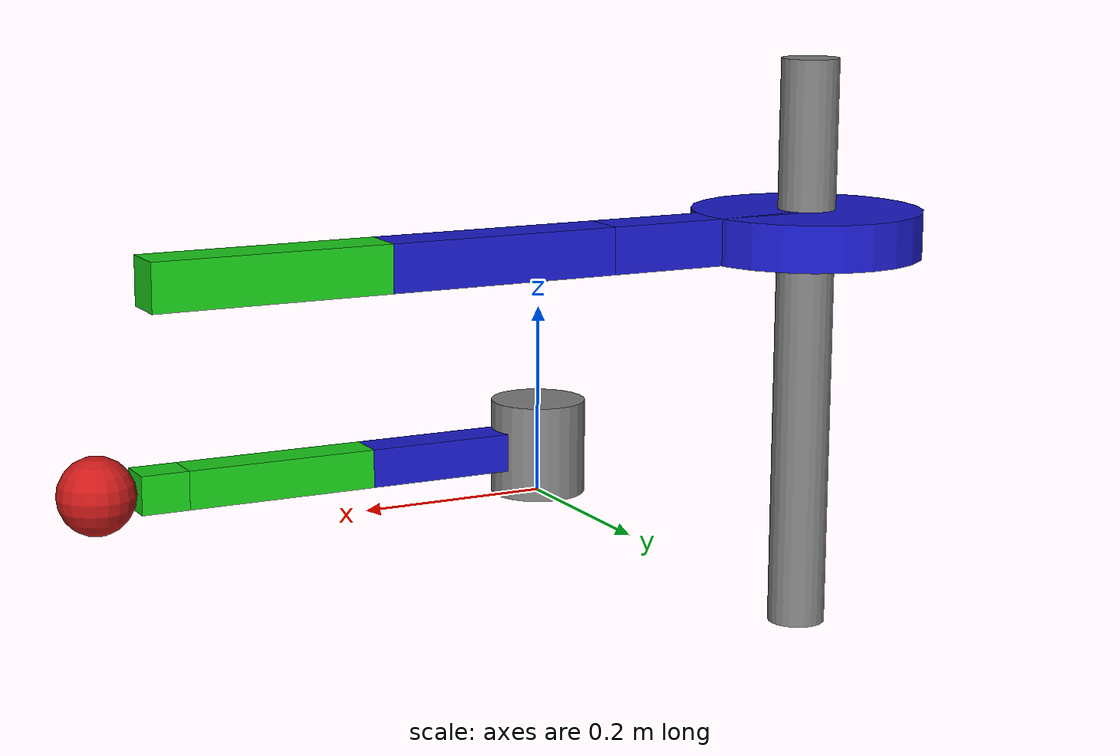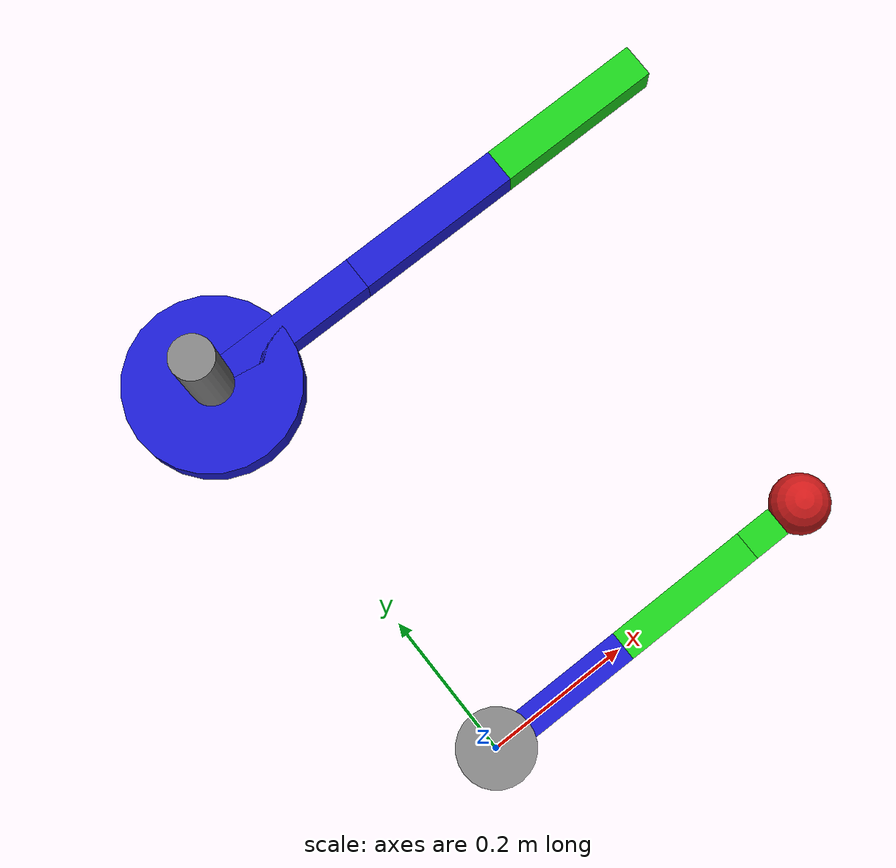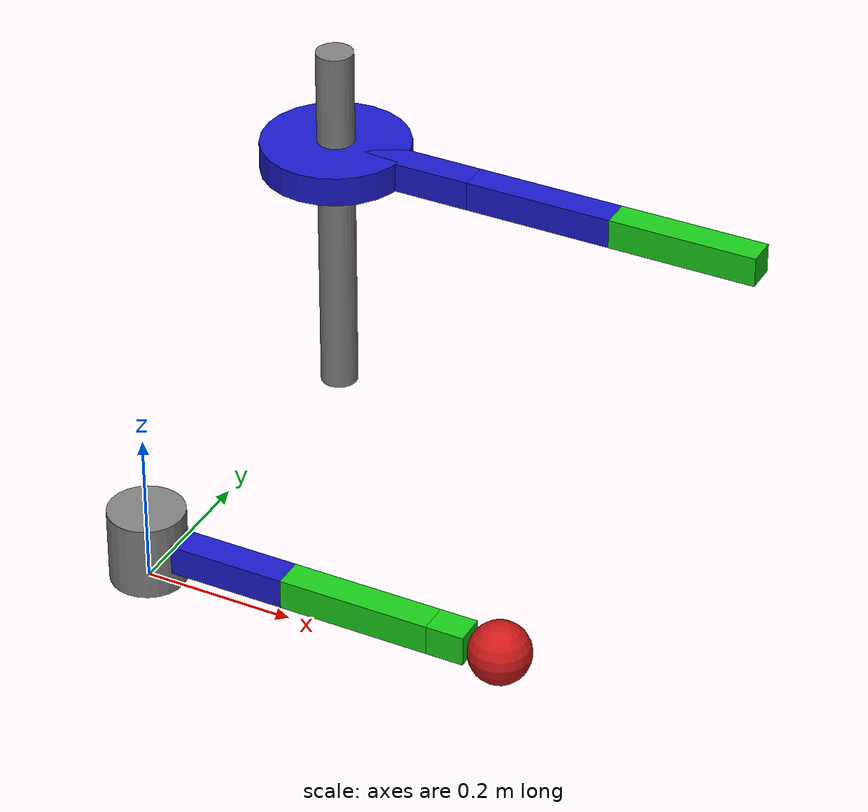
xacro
<?xml version="1.0"?>
<robot xmlns:xacro="http://www.ros.org/wiki/xacro" name="any_axis_arm">

	<ros2_control name="FakeSystem" type="system">

		<hardware>
			<plugin>fake_components/GenericSystem</plugin>
		</hardware>

		<joint name="m_joint_1">
			<command_interface name="position">
				<param name="min"> -2.3562</param>
				<param name="max"> 2.3562</param>
			</command_interface>
			<state_interface name="position"/>
			<state_interface name="velocity"/>
		</joint>

		<joint name="m_joint_2">
			<command_interface name="position">
				<param name="min"> -2.3562</param>
				<param name="max"> 2.3562</param>
			</command_interface>
			<state_interface name="position"/>
			<state_interface name="velocity"/>
		</joint>

		<joint name="m_joint_3">
			<command_interface name="position">
				<param name="min"> -2.3562</param>
				<param name="max"> 2.3562</param>
			</command_interface>
			<state_interface name="position"/>
			<state_interface name="velocity"/>
		</joint>

		<joint name="m_joint_4">
			<command_interface name="position">
				<param name="min"> -2.3562</param>
				<param name="max"> 2.3562</param>
			</command_interface>
			<state_interface name="position"/>
			<state_interface name="velocity"/>
		</joint>
		<joint name="s_joint_z">
			<command_interface name="position">
				<param name="min"> 0.05</param>
				<param name="max"> 0.45</param>
			</command_interface>
			<state_interface name="position"/>
			<state_interface name="velocity"/>
		</joint>
		<joint name="s_joint_1">
			<command_interface name="position">
				<param name="min"> -2.3562</param>
				<param name="max"> 2.3562</param>
			</command_interface>
			<state_interface name="position"/>
			<state_interface name="velocity"/>
		</joint>
		<joint name="s_joint_2">
			<command_interface name="position">
				<param name="min"> -2.3562</param>
				<param name="max"> 2.3562</param>
			</command_interface>
			<state_interface name="position"/>
			<state_interface name="velocity"/>
		</joint>
		<joint name="s_end_joint_y">
			<command_interface name="position">
				<param name="min"> -2.3562</param>
				<param name="max"> 2.3562</param>
			</command_interface>
			<state_interface name="position"/>
			<state_interface name="velocity"/>
		</joint>
		<joint name="s_end_joint_z">
			<command_interface name="position">
				<param name="min"> -2.3562</param>
				<param name="max"> 2.3562</param>
			</command_interface>
			<state_interface name="position"/>
			<state_interface name="velocity"/>
		</joint>
	</ros2_control>

	<gazebo>
		<plugin name="gazebo_ros2_control" filename="libgazebo_ros2_control.so">
			<parameters>$(find complete_robot)/config/controllers.yaml</parameters>
		</plugin>
	</gazebo>

	<xacro:property name="m_link_width" value="0.04"/>
	<xacro:property name="m_link1_length" value="0.2"/>
	<xacro:property name="m_link2_length" value="0.2"/>
	<xacro:property name="m_link3_length" value="0.05"/>
	<xacro:property name="end_effector_radius" value="0.04"/>

	<xacro:property name="s_link_z_length" value="0.5" />
	<xacro:property name="s_link1_length" value="0.2" />
	<xacro:property name="s_link2_length" value="0.2" />
	<xacro:property name="link_radius" value="0.02" />
	<material name="blue"><color rgba="0.1 0.1 0.8 1.0"/></material>
	<material name="green"><color rgba="0.1 0.8 0.1 1.0"/></material>
	<material name="grey"><color rgba="0.5 0.5 0.5 1.0"/></material>
	<material name="red"><color rgba="0.8 0.1 0.1 1.0"/></material>

<!-- ㅡㅡㅡㅡㅡㅡㅡㅡㅡㅡㅡㅡㅡㅡㅡㅡㅡㅡㅡㅡㅡㅡㅡㅡㅡㅡㅡㅡㅡㅡㅡㅡㅡㅡㅡㅡㅡㅡㅡㅡㅡㅡㅡㅡㅡㅡㅡㅡㅡ -->

	<link name="world" />

	<link name="m_base_link"><!--                 master base link 설정                -->
		<visual>
			<geometry>
				<cylinder radius="0.05" length="0.1"/>
			</geometry>
			<material name="grey"/>
		</visual>
        <collision>
        	<geometry>
        		<cylinder radius="0.05" length="0.1"/>
        	</geometry>
        </collision>
        <inertial>
        	<mass value="1"/>
        	<inertia ixx="0.001" ixy="0" ixz="0"
        		iyy="0.001" iyz="0" izz="0.001"/>
        </inertial>
    </link>

    <joint name="world_to_m_base" type="fixed"><!--   world ro master base joint 설정  -->
    	<parent link="world"/>
    	<child link="m_base_link"/>
    	<origin xyz="0 0 0.05" rpy="0 0 0"/>
    </joint>

    <link name="m_link_1"><!--                   master link 1 설정                    -->
        <visual>
        	<origin xyz="${m_link1_length/2} 0 0"/>
        	<geometry>
        		<box size="${m_link1_length} ${m_link_width} 0.04"/>
        	</geometry>
        	<material name="blue"/>
        </visual>
        <collision>
        	<origin xyz="${m_link1_length/2} 0 0"/>
        	<geometry>
        		<box size="${m_link1_length} ${m_link_width} 0.04"/>
        	</geometry>
        </collision>
        <inertial>
        	<mass value="0.2"/>
        	<origin xyz="${m_link1_length/2} 0 0" rpy="0 0 0"/>
        	<inertia ixx="0.000054" ixy="0.0" ixz="0.0"
        		iyy="0.000694" iyz="0.0" izz="0.000694"/>
        </inertial>
    </link>

    <joint name="m_joint_1" type="revolute"><!--         master jonit 1 설정          -->
        <parent link="m_base_link" />
        <child link="m_link_1" />
        <origin xyz="0 0 0" rpy="0 0 0"/>
        <axis xyz="0 0 1"/>
        <limit lower="-2.3562" upper="2.3562" effort="1.5" velocity="6.38791"/>
    </joint>

    <link name="m_link_2"><!--                    master link 2 설정                  -->
        <visual>
        	<origin xyz="${m_link2_length/2} 0 0"/>
        	<geometry>
        		<box size="${m_link2_length} ${m_link_width} 0.04"/>
        	</geometry>
        	<material name="green"/>
        </visual>
        <collision>
        	<origin xyz="${m_link2_length/2} 0 0"/>
        	<geometry>
        		<box size="${m_link2_length} ${m_link_width} 0.04"/>
        	</geometry>
        </collision>
        <inertial>
        	<mass value="0.2"/>
        	<origin xyz="${m_link2_length/2} 0 0" rpy="0 0 0"/>
        	<inertia ixx="0.000054" ixy="0.0" ixz="0.0"
        		iyy="0.000694" iyz="0.0" izz="0.000694"/>
        </inertial>
    </link>

    <joint name="m_joint_2" type="revolute">
        <parent link="m_link_1" />
        <child link="m_link_2" />
        <origin xyz="${m_link1_length} 0 0" rpy="0 0 0"/>
        <axis xyz="0 1 0"/>
        <limit lower="-2.3562" upper="2.3562" effort="1.5" velocity="6.38791"/>
    </joint>

	<link name="m_link_3">
		<visual>
			<origin xyz="${m_link3_length/2} 0 0"/>
			<geometry>
				<box size="${m_link3_length} ${m_link_width} 0.04"/>
			</geometry>
			<material name="green"/>
		</visual>
		<collision>
			<origin xyz="${m_link3_length/2} 0 0"/>
			<geometry>
				<box size="${m_link3_length} ${m_link_width} 0.04"/>
			</geometry>
		</collision>
		<inertial>
			<mass value="0.1"/>
			<origin xyz="${m_link3_length/2} 0 0" rpy="0 0 0"/>
			<inertia ixx="0.0001" ixy="0.0" ixz="0.0"
				iyy="0.0001" iyz="0.0" izz="0.0001"/>
		</inertial>
	</link>

	<joint name="m_joint_3" type="revolute">
		<parent link="m_link_2" />
		<child link="m_link_3" />
		<origin xyz="${m_link2_length} 0 0" rpy="0 0 0"/>
		<axis xyz="0 1 0"/>
		<limit lower="-2.3562" upper="2.3562" effort="1.5" velocity="6.38791"/>
	</joint>

	<link name="m_end_effector">
		<visual>
			<origin xyz="${end_effector_radius} 0 0" />
			<geometry>
				<sphere radius="${end_effector_radius}" />
			</geometry>
			<material name="red"/>
		</visual>
		<collision>
			<origin xyz="${end_effector_radius} 0 0" rpy="0 0 0" />
			<geometry>
				<sphere radius="${end_effector_radius}" />
			</geometry>
		</collision>
		<inertial>
			<mass value="0.01" />
			<origin xyz="0 0 0" rpy="0 0 0" />
			<inertia ixx="0.0001" ixy="0" ixz="0"
				iyy="0.0001" iyz="0" izz="0.0001" />
		</inertial>
	</link>

	<joint name="m_joint_4" type="revolute">
		<parent link="m_link_3" />
		<child link="m_end_effector" />
		<origin xyz="${m_link3_length} 0 0" rpy="0 0 0" />
		<axis xyz="0 0 1" />
		<limit lower="-2.3562" upper="2.3562" effort="1.5" velocity="6.38791" />
	</joint>

<!-- ㅡㅡㅡㅡㅡㅡㅡㅡㅡㅡㅡㅡㅡㅡㅡㅡㅡㅡㅡㅡㅡㅡㅡㅡㅡㅡㅡㅡㅡㅡㅡㅡㅡㅡㅡㅡㅡㅡㅡㅡㅡㅡㅡㅡㅡㅡㅡㅡㅡㅡㅡㅡㅡㅡㅡ -->

	<link name="s_pole_link">
		<visual>
			<origin xyz="0 0 0" rpy="0 0 0"/>
			<geometry>
				<cylinder radius="0.025" length="${s_link_z_length}"/>
			</geometry>
			<material name="grey"/>
		</visual>
        <collision>
        	<origin xyz="0 0 0" rpy="0 0 0"/>
        	<geometry>
        		<cylinder radius="0.02" length="${s_link_z_length}"/>
        	</geometry>
        </collision>
        <inertial>
        	<mass value="1"/>
        	<inertia ixx="0.001" ixy="0" ixz="0" iyy="0.001" iyz="0" izz="0.001"/>
        </inertial>
    </link>

    <joint name="world_to_s_pole" type="fixed">
    	<parent link="world"/>
    	<child link="s_pole_link"/>
    	<origin xyz="0 0.5 0.25" rpy="0 0 0"/>
    </joint>

    <link name='s_slider_link'>
    	<visual>
    		<origin xyz="0 0 0" rpy="0 0 0"/>
    		<geometry>
    			<cylinder radius="0.1" length="0.04"/>
    		</geometry>
    		<material name="blue"/>
    	</visual>
    	<collision>
    		<origin xyz="0 0 0" rpy="0 0 0"/>
    		<geometry>
    			<cylinder radius="0.1" length="0.04"/>
    		</geometry>
    	</collision>
    	<inertial>
        	<mass value="1"/>
        	<inertia ixx="0.001" ixy="0" ixz="0" iyy="0.001" iyz="0" izz="0.001"/>
    	</inertial>
    </link>

    <joint name="s_joint_z" type="prismatic">
    	<parent link="s_pole_link"/>
    	<child link="s_slider_link"/>
    	<origin xyz="0 0 -0.15" rpy="0 0 0"/>
    	<axis xyz="0 0 1"/>
    	<limit lower="0.05" upper="0.45" effort="100" velocity="0.1"/>
    </joint>

    <link name="s_base_link">
    	<visual>
    		<origin xyz="0.1 0 -0.04"/>
    		<geometry>
    			<box size="0.2 0.04 0.04"/>
    		</geometry>
    		<material name="blue"/>
    	</visual>
        <collision>
        	<origin xyz="0.2 0 -0.04" rpy="0 0 0"/>
        	<geometry>
        		<box size="0.1 0.04 0.04"/>
        	</geometry>
        </collision>
        <inertial>
        	<mass value="0.1"/>
        	<inertia ixx="0.0001" ixy="0" ixz="0" iyy="0.0001" iyz="0" izz="0.0001"/>
        </inertial>
    </link>

    <joint name="s_slider_to_base" type="fixed">
    	<parent link="s_slider_link"/>
    	<child link="s_base_link"/>
    	<origin xyz="0 0 0.04" rpy="0 0 0"/>
    </joint>

	<link name="s_link_1">
        <visual>
        	<origin xyz="${s_link1_length/2} 0 0"/>
        	<geometry>
        		<box size="${s_link1_length} 0.04 0.04"/>
        	</geometry>
        	<material name="blue"/>
        </visual>
        <collision>
        	<origin xyz="${s_link1_length/2} 0 0"/>
        	<geometry>
        		<box size="${s_link1_length} 0.04 0.04"/>
        	</geometry>
        </collision>
        <inertial>
        	<mass value="0.2"/>
        	<origin xyz="${s_link1_length/2} 0 0" rpy="0 0 0"/>
        	<inertia ixx="0.000054" ixy="0.0" ixz="0.0" iyy="0.000694" iyz="0.0" izz="0.000694"/>
        </inertial>
    </link>

    <joint name="s_joint_1" type="revolute">
        <parent link="s_base_link" />
        <child link="s_link_1" />
        <origin xyz="0.2 0 -0.04" rpy="0 0 0"/>
        <axis xyz="0 0 1"/>
        <limit lower="-2.3562" upper="2.3562" effort="1.5" velocity="6.38791"/>
    </joint>

<!--                 link_2 물리량 설정                  -->

    <link name="s_link_2">
        <visual>
        	<origin xyz="${s_link2_length/2} 0 0"/>
        	<geometry>
        		<box size="${s_link2_length} 0.04 0.04"/>
        	</geometry>
        	<material name="green"/>
        </visual>
        <collision>
        	<origin xyz="${s_link2_length/2} 0 0"/>
        	<geometry>
        		<box size="${s_link2_length} 0.04 0.04"/>
        	</geometry>
        </collision>
        <inertial>
        	<mass value="0.2"/>
        	<origin xyz="${s_link2_length/2} 0 0" rpy="0 0 0"/>
        	<inertia ixx="0.000054" ixy="0.0" ixz="0.0" iyy="0.000694" iyz="0.0" izz="0.000694"/>
        </inertial>
    </link>

    <joint name="s_joint_2" type="revolute">
        <parent link="s_link_1" />
        <child link="s_link_2" />
        <origin xyz="${s_link1_length} 0 0" rpy="0 0 0"/>
        <axis xyz="0 0 1"/>
        <limit lower="-2.3562" upper="2.3562" effort="1.5" velocity="6.38791"/>
    </joint>
</robot>
